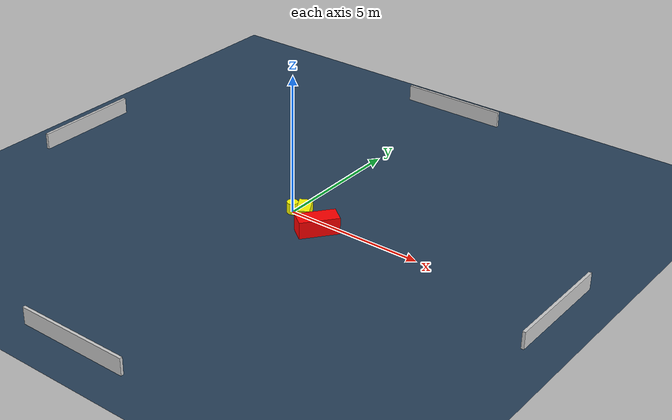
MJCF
<?xml version="1.0" ?>
<mujoco model="generated_environment">
  <option timestep="0.01" integrator="RK4" cone="elliptic"/>
  <default>
    <geom density="1"/>
  </default>
  <asset>
    <texture builtin="gradient" height="3072" name="skybox" rgb1="0.3 0.5 0.7" rgb2="0 0 0" type="skybox" width="512"/>
    <texture builtin="checker" height="300" name="groundplane" rgb1="0.2 0.3 0.4" rgb2="0.1 0.2 0.3" type="2d" width="300"/>
    <material name="groundplane" reflectance="0.2" texrepeat="5 5" texture="groundplane"/>
  </asset>
  <worldbody>
    <light dir="0 0 -1" directional="true" pos="0 0 1.5"/>
    <geom condim="3" friction="0.5 0.005 0.001" material="groundplane" name="floor" pos="0 0 0" size="0 0 0.05" type="plane"/>
    <body name="walls">
      <geom name="wall_1" condim="4" pos="-10.0 0.0 0.3" rgba="0.800000011920929 0.800000011920929 0.800000011920929 1.0" size="0.05 2.0 0.3" type="box"/>
      <geom name="wall_2" condim="4" pos="10.0 0.0 0.3" rgba="0.800000011920929 0.800000011920929 0.800000011920929 1.0" size="0.05 2.0 0.3" type="box"/>
      <geom name="wall_3" condim="4" pos="0.0 -10.0 0.3" rgba="0.800000011920929 0.800000011920929 0.800000011920929 1.0" size="2.0 0.05 0.3" type="box"/>
      <geom name="wall_4" condim="4" pos="0.0 10.0 0.3" rgba="0.800000011920929 0.800000011920929 0.800000011920929 1.0" size="2.0 0.05 0.3" type="box"/>
    </body>
    <body name="robot">
      <joint name="joint_x" type="slide" pos="0 0 0" axis="1 0 0"/>
      <joint name="joint_y" type="slide" pos="0 0 0" axis="0 1 0"/>
      <geom name="robot" type="cylinder" pos="0.0 0.0 0.2" size="0.2 0.2 0.0" mass="5.0" friction="1.0 0.005 0.0001" condim="4" rgba="1.0 1.0 0.0 1.0"/>
    </body>
    <body name="obstacle_1_movable">
      <geom name="obstacle_1_movable" condim="4" pos="0.6704759868282811 -0.2134325121621074 0.3" euler="0 0 29.455888931758004" friction="0.0 0.005 0.001" rgba="1.0 1.0 0.0 1.0" size="0.22701504116948223 0.4065711687585939 0.3" type="box" mass="0.1"/>
      <joint type="free"/>
    </body>
    <body name="obstacle_2_static">
      <geom name="obstacle_2_static" condim="4" pos="1.443608404330127 -0.5092552853864734 0.3" euler="0 0 142.47140589154984" friction="0.0 0.005 0.001" rgba="1.0 0.0 0.0 1.0" size="0.3207857210448258 0.6987746616944357 0.3" type="box"/>
    </body>
  </worldbody>
  <actuator>
    <motor name="actuator_x" joint="joint_x" gear="1" ctrlrange="-1 1"/>
    <motor name="actuator_y" joint="joint_y" gear="1" ctrlrange="-1 1"/>
  </actuator>
</mujoco>
